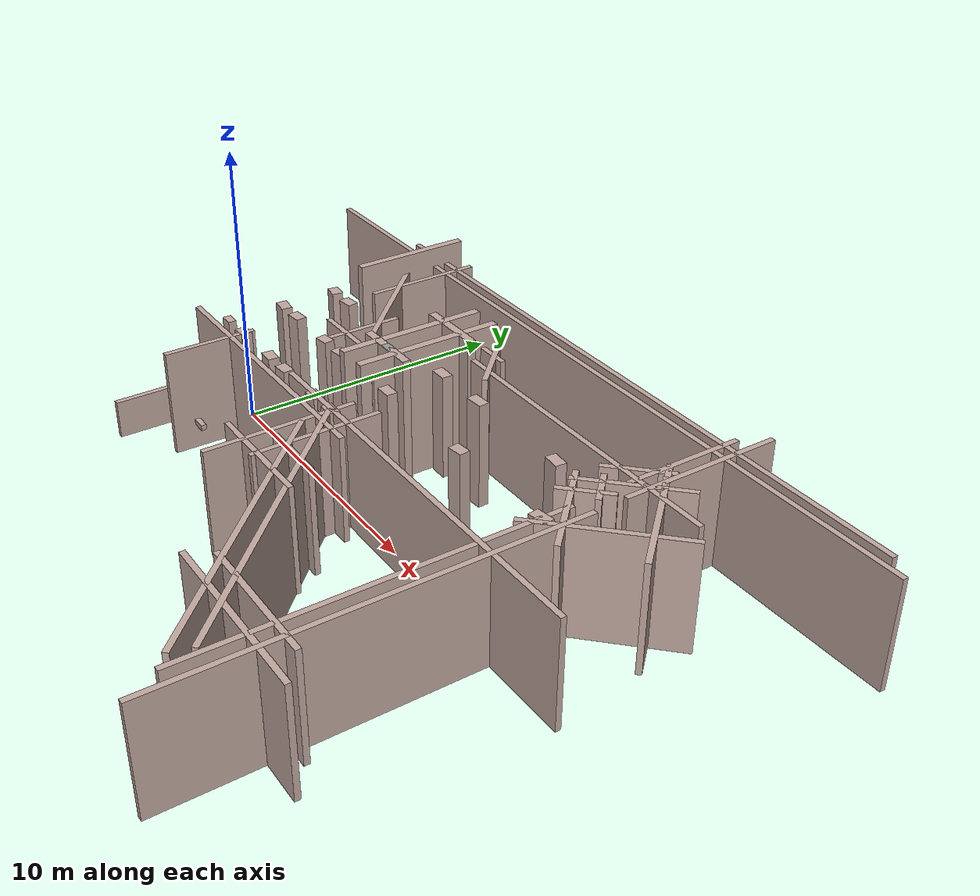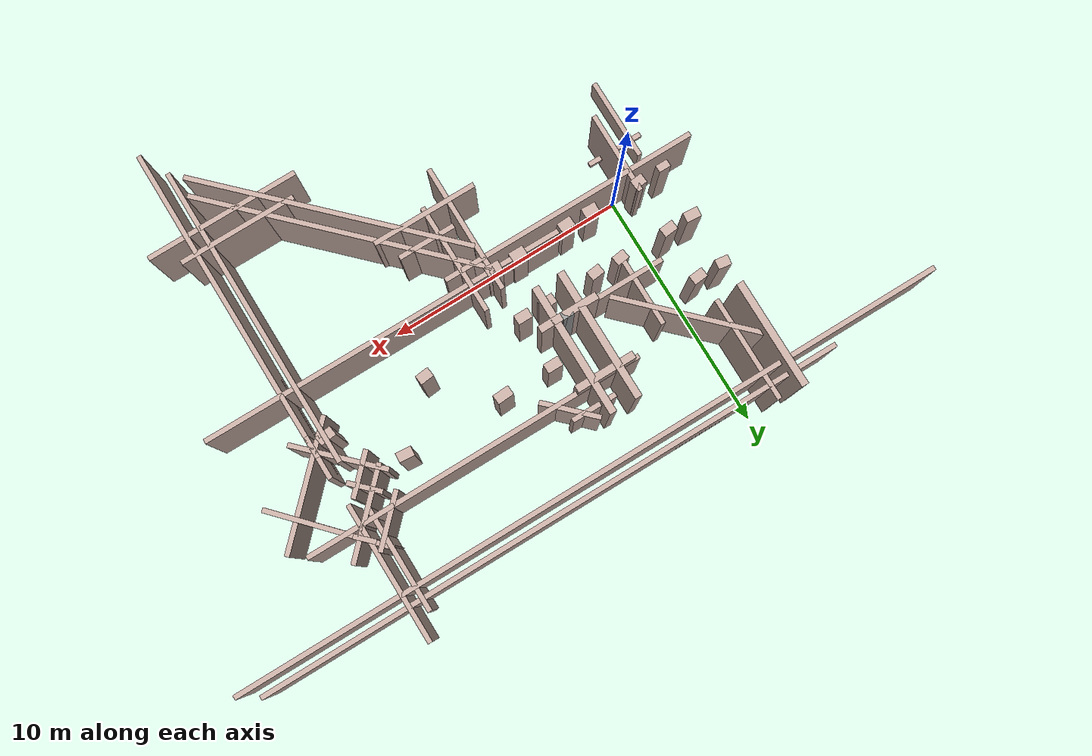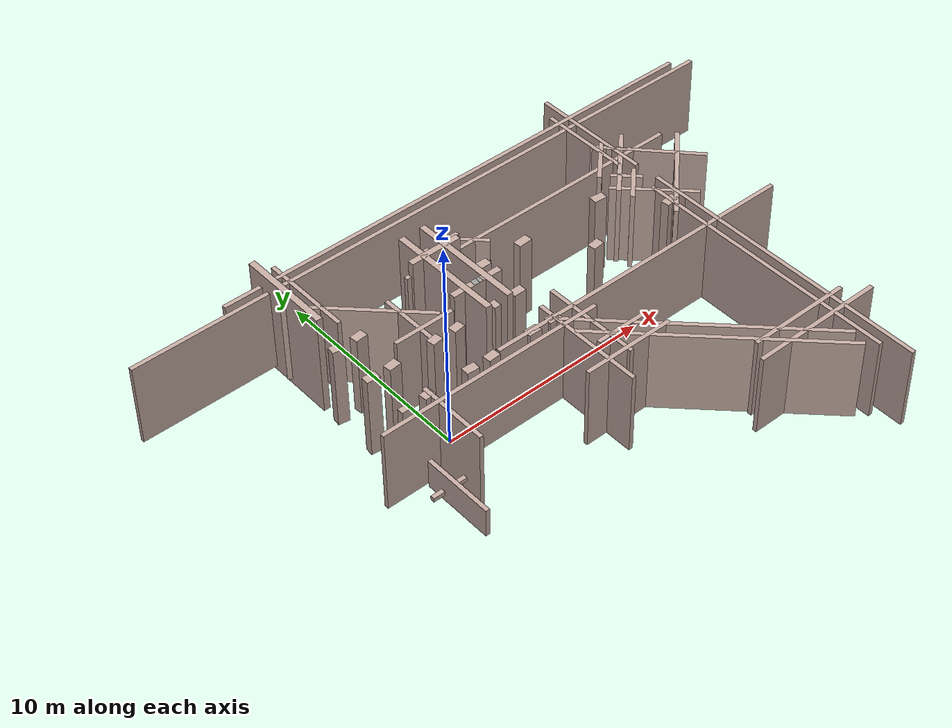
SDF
<sdf version="1.6">
 <model name="gedung_p">
  <pose>0.050512 1.27019 0 0 -0 0</pose>
  <link name="Wall_130">
   <collision name="Wall_130_Collision">
    <geometry><box><size>4.5 0.3 5.0</size></box></geometry>
    <pose>0 0 1.25 0 -0 0</pose>
   </collision>
   <visual name="Wall_130_Visual">
    <pose>0 0 1.25 0 -0 0</pose>
    <geometry><box><size>4.5 0.3 5.0</size></box></geometry>
    <material>
     <script><uri>file://media/materials/scripts/gazebo.material</uri><name>Gazebo/Grey</name></script>
     <ambient>0.760784 0.662745 0.627451 1</ambient>
    </material>
    <meta><layer>0</layer></meta>
   </visual>
   <pose>-1.87251 6.61981 0 0 -0 1.5708</pose>
  </link>
  <link name="Wall_132">
   <collision name="Wall_132_Collision">
    <geometry><box><size>4.40008 0.2 4.0</size></box></geometry>
    <pose>0 0 1 0 -0 0</pose>
   </collision>
   <visual name="Wall_132_Visual">
    <pose>0 0 1 0 -0 0</pose>
    <geometry><box><size>4.40008 0.2 4.0</size></box></geometry>
    <material>
     <script><uri>file://media/materials/scripts/gazebo.material</uri><name>Gazebo/Grey</name></script>
     <ambient>0.760784 0.662745 0.627451 1</ambient>
    </material>
    <meta><layer>0</layer></meta>
   </visual>
   <pose>-0.943512 6.5908 0 0 -0 -1.5708</pose>
  </link>
  <link name="Wall_137">
   <collision name="Wall_137_Collision">
    <geometry><box><size>6.40062 0.2 4.0</size></box></geometry>
    <pose>0 0 1 0 -0 0</pose>
   </collision>
   <visual name="Wall_137_Visual">
    <pose>0 0 1 0 -0 0</pose>
    <geometry><box><size>6.40062 0.2 4.0</size></box></geometry>
    <material>
     <script><uri>file://media/materials/scripts/gazebo.material</uri><name>Gazebo/Grey</name></script>
     <ambient>0.760784 0.662745 0.627451 1</ambient>
    </material>
    <meta><layer>0</layer></meta>
   </visual>
   <pose>0.152488 4.4448 0 0 -0 -0.785398</pose>
  </link>
  <link name="Wall_138">
   <collision name="Wall_138_Collision">
    <geometry><box><size>2.90014 0.2 4.0</size></box></geometry>
    <pose>0 0 1 0 -0 0</pose>
   </collision>
   <visual name="Wall_138_Visual">
    <pose>0 0 1 0 -0 0</pose>
    <geometry><box><size>2.90014 0.2 4.0</size></box></geometry>
    <material>
     <script><uri>file://media/materials/scripts/gazebo.material</uri><name>Gazebo/Grey</name></script>
     <ambient>0.760784 0.662745 0.627451 1</ambient>
    </material>
    <meta><layer>0</layer></meta>
   </visual>
   <pose>1.24849 2.67381 0 0 -0 -1.5708</pose>
  </link>
  <link name="Wall_139">
   <collision name="Wall_139_Collision">
    <geometry><box><size>4.90086 0.2 4.0</size></box></geometry>
    <pose>0 0 1 0 -0 0</pose>
   </collision>
   <visual name="Wall_139_Visual">
    <pose>0 0 1 0 -0 0</pose>
    <geometry><box><size>4.90086 0.2 4.0</size></box></geometry>
    <material>
     <script><uri>file://media/materials/scripts/gazebo.material</uri><name>Gazebo/Grey</name></script>
     <ambient>0.760784 0.662745 0.627451 1</ambient>
    </material>
    <meta><layer>0</layer></meta>
   </visual>
   <pose>2.42349 1.9988 0 0 -0 0</pose>
  </link>
  <link name="Wall_140">
   <collision name="Wall_140_Collision">
    <geometry><box><size>5.5 0.3 5.0</size></box></geometry>
    <pose>0 0 1.25 0 -0 0</pose>
   </collision>
   <visual name="Wall_140_Visual">
    <pose>0 0 1.25 0 -0 0</pose>
    <geometry><box><size>5.5 0.3 5.0</size></box></geometry>
    <material>
     <script><uri>file://media/materials/scripts/gazebo.material</uri><name>Gazebo/Grey</name></script>
     <ambient>0.760784 0.662745 0.627451 1</ambient>
    </material>
    <meta><layer>0</layer></meta>
   </visual>
   <pose>3.59849 3.29881 0 0 -0 1.5708</pose>
  </link>
  <link name="Wall_141">
   <collision name="Wall_141_Collision">
    <geometry><box><size>2.5 0.3 5.0</size></box></geometry>
    <pose>0 0 1.25 0 -0 0</pose>
   </collision>
   <visual name="Wall_141_Visual">
    <pose>0 0 1.25 0 -0 0</pose>
    <geometry><box><size>2.5 0.3 5.0</size></box></geometry>
    <material>
     <script><uri>file://media/materials/scripts/gazebo.material</uri><name>Gazebo/Grey</name></script>
     <ambient>0.760784 0.662745 0.627451 1</ambient>
    </material>
    <meta><layer>0</layer></meta>
   </visual>
   <pose>4.14849 4.5988 0 0 -0 0</pose>
  </link>
  <link name="Wall_142">
   <collision name="Wall_142_Collision">
    <geometry><box><size>5.5 0.3 5.0</size></box></geometry>
    <pose>0 0 1.25 0 -0 0</pose>
   </collision>
   <visual name="Wall_142_Visual">
    <pose>0 0 1.25 0 -0 0</pose>
    <geometry><box><size>5.5 0.3 5.0</size></box></geometry>
    <material>
     <script><uri>file://media/materials/scripts/gazebo.material</uri><name>Gazebo/Grey</name></script>
     <ambient>0.760784 0.662745 0.627451 1</ambient>
    </material>
    <meta><layer>0</layer></meta>
   </visual>
   <pose>4.69849 3.29881 0 0 -0 -1.5708</pose>
  </link>
  <link name="Wall_143">
   <collision name="Wall_143_Collision">
    <geometry><box><size>2.5 0.3 5.0</size></box></geometry>
    <pose>0 0 1.25 0 -0 0</pose>
   </collision>
   <visual name="Wall_143_Visual">
    <pose>0 0 1.25 0 -0 0</pose>
    <geometry><box><size>2.5 0.3 5.0</size></box></geometry>
    <material>
     <script><uri>file://media/materials/scripts/gazebo.material</uri><name>Gazebo/Grey</name></script>
     <ambient>0.760784 0.662745 0.627451 1</ambient>
    </material>
    <meta><layer>0</layer></meta>
   </visual>
   <pose>4.14849 1.9988 0 0 -0 3.14159</pose>
  </link>
  <link name="Wall_145">
   <collision name="Wall_145_Collision">
    <geometry><box><size>30.5 0.2 4.0</size></box></geometry>
    <pose>0 0 1 0 -0 0</pose>
   </collision>
   <visual name="Wall_145_Visual">
    <pose>0 0 1 0 -0 0</pose>
    <geometry><box><size>30.5 0.2 4.0</size></box></geometry>
    <material>
     <script><uri>file://media/materials/scripts/gazebo.material</uri><name>Gazebo/Grey</name></script>
     <ambient>0.760784 0.662745 0.627451 1</ambient>
    </material>
    <meta><layer>0</layer></meta>
   </visual>
   <pose>6.63149 7.64081 0 0 -0 0</pose>
  </link>
  <link name="Wall_147">
   <collision name="Wall_147_Collision">
    <geometry><box><size>2.4 0.2 0.2</size></box></geometry>
    <pose>0 0 0.05 0 -0 0</pose>
   </collision>
   <visual name="Wall_147_Visual">
    <pose>0 0 0.05 0 -0 0</pose>
    <geometry><box><size>2.4 0.2 0.2</size></box></geometry>
    <material>
     <script><uri>file://media/materials/scripts/gazebo.material</uri><name>Gazebo/Grey</name></script>
     <ambient>0.760784 0.662745 0.627451 1</ambient>
    </material>
    <meta><layer>0</layer></meta>
   </visual>
   <pose>1.87849 8.1548 0 0 -0 0</pose>
  </link>
  <link name="Wall_149">
   <collision name="Wall_149_Collision">
    <geometry><box><size>1.9 0.2 4.0</size></box></geometry>
    <pose>0 0 1 0 -0 0</pose>
   </collision>
   <visual name="Wall_149_Visual">
    <pose>0 0 1 0 -0 0</pose>
    <geometry><box><size>1.9 0.2 4.0</size></box></geometry>
    <material>
     <script><uri>file://media/materials/scripts/gazebo.material</uri><name>Gazebo/Grey</name></script>
     <ambient>0.760784 0.662745 0.627451 1</ambient>
    </material>
    <meta><layer>0</layer></meta>
   </visual>
   <pose>4.69849 5.02381 0 0 -0 1.5708</pose>
  </link>
  <link name="Wall_150">
   <collision name="Wall_150_Collision">
    <geometry><box><size>1.9 0.2 4.0</size></box></geometry>
    <pose>0 0 1 0 -0 0</pose>
   </collision>
   <visual name="Wall_150_Visual">
    <pose>0 0 1 0 -0 0</pose>
    <geometry><box><size>1.9 0.2 4.0</size></box></geometry>
    <material>
     <script><uri>file://media/materials/scripts/gazebo.material</uri><name>Gazebo/Grey</name></script>
     <ambient>0.760784 0.662745 0.627451 1</ambient>
    </material>
    <meta><layer>0</layer></meta>
   </visual>
   <pose>5.12349 5.44881 0 0 -0 0</pose>
  </link>
  <link name="Wall_151">
   <collision name="Wall_151_Collision">
    <geometry><box><size>2.4 0.2 4.0</size></box></geometry>
    <pose>0 0 1 0 -0 0</pose>
   </collision>
   <visual name="Wall_151_Visual">
    <pose>0 0 1 0 -0 0</pose>
    <geometry><box><size>2.4 0.2 4.0</size></box></geometry>
    <material>
     <script><uri>file://media/materials/scripts/gazebo.material</uri><name>Gazebo/Grey</name></script>
     <ambient>0.760784 0.662745 0.627451 1</ambient>
    </material>
    <meta><layer>0</layer></meta>
   </visual>
   <pose>5.93749 5.0598 0 0 -0 -0.785398</pose>
  </link>
  <link name="Wall_152">
   <collision name="Wall_152_Collision">
    <geometry><box><size>14.4 0.2 4.0</size></box></geometry>
    <pose>0 0 1 0 -0 0</pose>
   </collision>
   <visual name="Wall_152_Visual">
    <pose>0 0 1 0 -0 0</pose>
    <geometry><box><size>14.4 0.2 4.0</size></box></geometry>
    <material>
     <script><uri>file://media/materials/scripts/gazebo.material</uri><name>Gazebo/Grey</name></script>
     <ambient>0.760784 0.662745 0.627451 1</ambient>
    </material>
    <meta><layer>0</layer></meta>
   </visual>
   <pose>9.87649 4.6708 0 0 -0 0</pose>
  </link>
  <link name="Wall_154">
   <collision name="Wall_154_Collision">
    <geometry><box><size>2.40052 0.2 4.0</size></box></geometry>
    <pose>0 0 1 0 -0 0</pose>
   </collision>
   <visual name="Wall_154_Visual">
    <pose>0 0 1 0 -0 0</pose>
    <geometry><box><size>2.40052 0.2 4.0</size></box></geometry>
    <material>
     <script><uri>file://media/materials/scripts/gazebo.material</uri><name>Gazebo/Grey</name></script>
     <ambient>0.760784 0.662745 0.627451 1</ambient>
    </material>
    <meta><layer>0</layer></meta>
   </visual>
   <pose>13.8155 5.0598 0 0 -0 0.785398</pose>
  </link>
  <link name="Wall_155">
   <collision name="Wall_155_Collision">
    <geometry><box><size>4.39964 0.2 4.0</size></box></geometry>
    <pose>0 0 1 0 -0 0</pose>
   </collision>
   <visual name="Wall_155_Visual">
    <pose>0 0 1 0 -0 0</pose>
    <geometry><box><size>4.39964 0.2 4.0</size></box></geometry>
    <material>
     <script><uri>file://media/materials/scripts/gazebo.material</uri><name>Gazebo/Grey</name></script>
     <ambient>0.760784 0.662745 0.627451 1</ambient>
    </material>
    <meta><layer>0</layer></meta>
   </visual>
   <pose>14.2045 6.4988 0 0 -0 1.5708</pose>
  </link>
  <link name="Wall_157">
   <collision name="Wall_157_Collision">
    <geometry><box><size>24.9 0.2 4.0</size></box></geometry>
    <pose>0 0 1 0 -0 0</pose>
   </collision>
   <visual name="Wall_157_Visual">
    <pose>0 0 1 0 -0 0</pose>
    <geometry><box><size>24.9 0.2 4.0</size></box></geometry>
    <material>
     <script><uri>file://media/materials/scripts/gazebo.material</uri><name>Gazebo/Grey</name></script>
     <ambient>0.760784 0.662745 0.627451 1</ambient>
    </material>
    <meta><layer>0</layer></meta>
   </visual>
   <pose>8.60349 8.1548 0 0 -0 0</pose>
  </link>
  <link name="Wall_159">
   <collision name="Wall_159_Collision">
    <geometry><box><size>5.9 0.2 4.0</size></box></geometry>
    <pose>0 0 1 0 -0 0</pose>
   </collision>
   <visual name="Wall_159_Visual">
    <pose>0 0 1 0 -0 0</pose>
    <geometry><box><size>5.9 0.2 4.0</size></box></geometry>
    <material>
     <script><uri>file://media/materials/scripts/gazebo.material</uri><name>Gazebo/Grey</name></script>
     <ambient>0.760784 0.662745 0.627451 1</ambient>
    </material>
    <meta><layer>0</layer></meta>
   </visual>
   <pose>14.7785 6.7298 0 0 -0 -1.5708</pose>
  </link>
  <link name="Wall_161">
   <collision name="Wall_161_Collision">
    <geometry><box><size>0.898622 0.2 4.0</size></box></geometry>
    <pose>0 0 1 0 -0 0</pose>
   </collision>
   <visual name="Wall_161_Visual">
    <pose>0 0 1 0 -0 0</pose>
    <geometry><box><size>0.898622 0.2 4.0</size></box></geometry>
    <material>
     <script><uri>file://media/materials/scripts/gazebo.material</uri><name>Gazebo/Grey</name></script>
     <ambient>0.760784 0.662745 0.627451 1</ambient>
    </material>
    <meta><layer>0</layer></meta>
   </visual>
   <pose>14.902 5.18131 0 0 -0 -0.785398</pose>
  </link>
  <link name="Wall_162">
   <collision name="Wall_162_Collision">
    <geometry><box><size>3.9 0.2 4.0</size></box></geometry>
    <pose>0 0 1 0 -0 0</pose>
   </collision>
   <visual name="Wall_162_Visual">
    <pose>0 0 1 0 -0 0</pose>
    <geometry><box><size>3.9 0.2 4.0</size></box></geometry>
    <material>
     <script><uri>file://media/materials/scripts/gazebo.material</uri><name>Gazebo/Grey</name></script>
     <ambient>0.760784 0.662745 0.627451 1</ambient>
    </material>
    <meta><layer>0</layer></meta>
   </visual>
   <pose>14.3715 4.4033 0 0 -0 -2.35581</pose>
  </link>
  <link name="Wall_164">
   <collision name="Wall_164_Collision">
    <geometry><box><size>1.399964 0.2 4.0</size></box></geometry>
    <pose>0 0 1 0 -0 0</pose>
   </collision>
   <visual name="Wall_164_Visual">
    <pose>0 0 1 0 -0 0</pose>
    <geometry><box><size>1.399964 0.2 4.0</size></box></geometry>
    <material>
     <script><uri>file://media/materials/scripts/gazebo.material</uri><name>Gazebo/Grey</name></script>
     <ambient>0.760784 0.662745 0.627451 1</ambient>
    </material>
    <meta><layer>0</layer></meta>
   </visual>
   <pose>13.93 3.53681 0 0 -0 -0.78422</pose>
  </link>
  <link name="Wall_165">
   <collision name="Wall_165_Collision">
    <geometry><box><size>1.900418 0.2 4.0</size></box></geometry>
    <pose>0 0 1 0 -0 0</pose>
   </collision>
   <visual name="Wall_165_Visual">
    <pose>0 0 1 0 -0 0</pose>
    <geometry><box><size>1.900418 0.2 4.0</size></box></geometry>
    <material>
     <script><uri>file://media/materials/scripts/gazebo.material</uri><name>Gazebo/Grey</name></script>
     <ambient>0.760784 0.662745 0.627451 1</ambient>
    </material>
    <meta><layer>0</layer></meta>
   </visual>
   <pose>13.842 3.02431 0 0 -0 -2.35619</pose>
  </link>
  <link name="Wall_166">
   <collision name="Wall_166_Collision">
    <geometry><box><size>3.8993 0.2 4.0</size></box></geometry>
    <pose>0 0 1 0 -0 0</pose>
   </collision>
   <visual name="Wall_166_Visual">
    <pose>0 0 1 0 -0 0</pose>
    <geometry><box><size>3.8993 0.2 4.0</size></box></geometry>
    <material>
     <script><uri>file://media/materials/scripts/gazebo.material</uri><name>Gazebo/Grey</name></script>
     <ambient>0.760784 0.662745 0.627451 1</ambient>
    </material>
    <meta><layer>0</layer></meta>
   </visual>
   <pose>14.1955 2.06981 0 0 -0 -0.785398</pose>
  </link>
  <link name="Wall_169">
   <collision name="Wall_169_Collision">
    <geometry><box><size>5.39864 0.2 4.0</size></box></geometry>
    <pose>0 0 1 0 -0 0</pose>
   </collision>
   <visual name="Wall_169_Visual">
    <pose>0 0 1 0 -0 0</pose>
    <geometry><box><size>5.39864 0.2 4.0</size></box></geometry>
    <material>
     <script><uri>file://media/materials/scripts/gazebo.material</uri><name>Gazebo/Grey</name></script>
     <ambient>0.760784 0.662745 0.627451 1</ambient>
    </material>
    <meta><layer>0</layer></meta>
   </visual>
   <pose>15.7685 2.3348 0 0 -0 0.785398</pose>
  </link>
  <link name="Wall_173">
   <collision name="Wall_173_Collision">
    <geometry><box><size>5.10546 0.2 4.0</size></box></geometry>
    <pose>0 0 1 0 -0 0</pose>
   </collision>
   <visual name="Wall_173_Visual">
    <pose>0 0 1 0 -0 0</pose>
    <geometry><box><size>5.10546 0.2 4.0</size></box></geometry>
    <material>
     <script><uri>file://media/materials/scripts/gazebo.material</uri><name>Gazebo/Grey</name></script>
     <ambient>0.760784 0.662745 0.627451 1</ambient>
    </material>
    <meta><layer>0</layer></meta>
   </visual>
   <pose>15.8565 4.1558 0 0 -0 -0.826345</pose>
  </link>
  <link name="Wall_175">
   <collision name="Wall_175_Collision">
    <geometry><box><size>0.9 0.2 4.0</size></box></geometry>
    <pose>0 0 1 0 -0 0</pose>
   </collision>
   <visual name="Wall_175_Visual">
    <pose>0 0 1 0 -0 0</pose>
    <geometry><box><size>0.9 0.2 4.0</size></box></geometry>
    <material>
     <script><uri>file://media/materials/scripts/gazebo.material</uri><name>Gazebo/Grey</name></script>
     <ambient>0.760784 0.662745 0.627451 1</ambient>
    </material>
    <meta><layer>0</layer></meta>
   </visual>
   <pose>14.8495 1.2408 0 0 -0 -1.5708</pose>
  </link>
  <link name="Wall_176">
   <collision name="Wall_176_Collision">
    <geometry><box><size>4.4 0.2 0.2</size></box></geometry>
    <pose>0 0 0.05 0 -0 0</pose>
   </collision>
   <visual name="Wall_176_Visual">
    <pose>0 0 0.05 0 -0 0</pose>
    <geometry><box><size>4.4 0.2 0.2</size></box></geometry>
    <material>
     <script><uri>file://media/materials/scripts/gazebo.material</uri><name>Gazebo/Grey</name></script>
     <ambient>0.760784 0.662745 0.627451 1</ambient>
    </material>
    <meta><layer>0</layer></meta>
   </visual>
   <pose>14.8495 0.015805 0 0 -0 -1.5708</pose>
  </link>
  <link name="Wall_178">
   <collision name="Wall_178_Collision">
    <geometry><box><size>14.4 0.2 4.0</size></box></geometry>
    <pose>0 0 1 0 -0 0</pose>
   </collision>
   <visual name="Wall_178_Visual">
    <pose>0 0 1 0 -0 0</pose>
    <geometry><box><size>14.4 0.2 4.0</size></box></geometry>
    <material>
     <script><uri>file://media/materials/scripts/gazebo.material</uri><name>Gazebo/Grey</name></script>
     <ambient>0.760784 0.662745 0.627451 1</ambient>
    </material>
    <meta><layer>0</layer></meta>
   </visual>
   <pose>14.8495 -4.5842 0 0 -0 -1.5708</pose>
  </link>
  <link name="Wall_180">
   <collision name="Wall_180_Collision">
    <geometry><box><size>6.4 0.2 4.0</size></box></geometry>
    <pose>0 0 1 0 -0 0</pose>
   </collision>
   <visual name="Wall_180_Visual">
    <pose>0 0 1 0 -0 0</pose>
    <geometry><box><size>6.4 0.2 4.0</size></box></geometry>
    <material>
     <script><uri>file://media/materials/scripts/gazebo.material</uri><name>Gazebo/Grey</name></script>
     <ambient>0.760784 0.662745 0.627451 1</ambient>
    </material>
    <meta><layer>0</layer></meta>
   </visual>
   <pose>13.2995 -8.1342 0 0 -0 3.14159</pose>
  </link>
  <link name="Wall_181">
   <collision name="Wall_181_Collision">
    <geometry><box><size>11.4 0.2 4.0</size></box></geometry>
    <pose>0 0 1 0 -0 0</pose>
   </collision>
   <visual name="Wall_181_Visual">
    <pose>0 0 1 0 -0 0</pose>
    <geometry><box><size>11.4 0.2 4.0</size></box></geometry>
    <material>
     <script><uri>file://media/materials/scripts/gazebo.material</uri><name>Gazebo/Grey</name></script>
     <ambient>0.760784 0.662745 0.627451 1</ambient>
    </material>
    <meta><layer>0</layer></meta>
   </visual>
   <pose>9.76949 -6.15419 0 0 -0 2.35619</pose>
  </link>
  <link name="Wall_182">
   <collision name="Wall_182_Collision">
    <geometry><box><size>4.4 0.2 4.0</size></box></geometry>
    <pose>0 0 1 0 -0 0</pose>
   </collision>
   <visual name="Wall_182_Visual">
    <pose>0 0 1 0 -0 0</pose>
    <geometry><box><size>4.4 0.2 4.0</size></box></geometry>
    <material>
     <script><uri>file://media/materials/scripts/gazebo.material</uri><name>Gazebo/Grey</name></script>
     <ambient>0.760784 0.662745 0.627451 1</ambient>
    </material>
    <meta><layer>0</layer></meta>
   </visual>
   <pose>6.73949 -4.1742 0 0 -0 3.14159</pose>
  </link>
  <link name="Wall_189">
   <collision name="Wall_189_Collision">
    <geometry><box><size>5.4 0.2 4.0</size></box></geometry>
    <pose>0 0 1 0 -0 0</pose>
   </collision>
   <visual name="Wall_189_Visual">
    <pose>0 0 1 0 -0 0</pose>
    <geometry><box><size>5.4 0.2 4.0</size></box></geometry>
    <material>
     <script><uri>file://media/materials/scripts/gazebo.material</uri><name>Gazebo/Grey</name></script>
     <ambient>0.760784 0.662745 0.627451 1</ambient>
    </material>
    <meta><layer>0</layer></meta>
   </visual>
   <pose>5.68949 -2.87419 0 0 -0 1.5708</pose>
  </link>
  <link name="Wall_190">
   <collision name="Wall_190_Collision">
    <geometry><box><size>2.378 0.2 0.2</size></box></geometry>
    <pose>0 0 0.05 0 -0 0</pose>
   </collision>
   <visual name="Wall_190_Visual">
    <pose>0 0 0.05 0 -0 0</pose>
    <geometry><box><size>2.378 0.2 0.2</size></box></geometry>
    <material>
     <script><uri>file://media/materials/scripts/gazebo.material</uri><name>Gazebo/Grey</name></script>
     <ambient>0.760784 0.662745 0.627451 1</ambient>
    </material>
    <meta><layer>0</layer></meta>
   </visual>
   <pose>5.14499 -1.5742 0 0 -0 3.14159</pose>
  </link>
  <link name="Wall_191">
   <collision name="Wall_191_Collision">
    <geometry><box><size>10.8997 0.2 4.0</size></box></geometry>
    <pose>0 0 1 0 -0 0</pose>
   </collision>
   <visual name="Wall_191_Visual">
    <pose>0 0 1 0 -0 0</pose>
    <geometry><box><size>10.8997 0.2 4.0</size></box></geometry>
    <material>
     <script><uri>file://media/materials/scripts/gazebo.material</uri><name>Gazebo/Grey</name></script>
     <ambient>0.760784 0.662745 0.627451 1</ambient>
    </material>
    <meta><layer>0</layer></meta>
   </visual>
   <pose>1.92549 -1.5742 0 0 -0 3.14159</pose>
  </link>
  <link name="Wall_192">
   <collision name="Wall_192_Collision">
    <geometry><box><size>3.40008 0.2 4.0</size></box></geometry>
    <pose>0 0 1 0 -0 0</pose>
   </collision>
   <visual name="Wall_192_Visual">
    <pose>0 0 1 0 -0 0</pose>
    <geometry><box><size>3.40008 0.2 4.0</size></box></geometry>
    <material>
     <script><uri>file://media/materials/scripts/gazebo.material</uri><name>Gazebo/Grey</name></script>
     <ambient>0.760784 0.662745 0.627451 1</ambient>
    </material>
    <meta><layer>0</layer></meta>
   </visual>
   <pose>-0.755012 -2.37419 0 0 -0 -1.57767</pose>
  </link>
  <link name="Wall_194">
   <collision name="Wall_194_Collision">
    <geometry><box><size>2.4 0.2 0.2</size></box></geometry>
    <pose>0 0 0.05 0 -0 0</pose>
   </collision>
   <visual name="Wall_194_Visual">
    <pose>0 0 0.05 0 -0 0</pose>
    <geometry><box><size>2.4 0.2 0.2</size></box></geometry>
    <material>
     <script><uri>file://media/materials/scripts/gazebo.material</uri><name>Gazebo/Grey</name></script>
     <ambient>0.760784 0.662745 0.627451 1</ambient>
    </material>
    <meta><layer>0</layer></meta>
   </visual>
   <pose>-1.31051 -3.1742 0 0 -0 3.14159</pose>
  </link>
  <link name="Wall_195">
   <collision name="Wall_195_Collision">
    <geometry><box><size>3.4 0.2 1.4</size></box></geometry>
    <pose>0 0 0.35 0 -0 0</pose>
   </collision>
   <visual name="Wall_195_Visual">
    <pose>0 0 0.35 0 -0 0</pose>
    <geometry><box><size>3.4 0.2 1.4</size></box></geometry>
    <material>
     <script><uri>file://media/materials/scripts/gazebo.material</uri><name>Gazebo/Grey</name></script>
     <ambient>0.760784 0.662745 0.627451 1</ambient>
    </material>
    <meta><layer>0</layer></meta>
   </visual>
   <pose>-1.86051 -3.97419 0 0 -0 -1.5708</pose>
  </link>
  <link name="Wall_205">
   <collision name="Wall_205_Collision">
    <geometry><box><size>15.4006 0.2 4.0</size></box></geometry>
    <pose>0 0 1 0 -0 0</pose>
   </collision>
   <visual name="Wall_205_Visual">
    <pose>0 0 1 0 -0 0</pose>
    <geometry><box><size>15.4006 0.2 4.0</size></box></geometry>
    <material>
     <script><uri>file://media/materials/scripts/gazebo.material</uri><name>Gazebo/Grey</name></script>
     <ambient>0.760784 0.662745 0.627451 1</ambient>
    </material>
    <meta><layer>0</layer></meta>
   </visual>
   <pose>10.4455 -0.995195 0 0 -0 -0.002895</pose>
  </link>
  <link name="Wall_206">
   <collision name="Wall_206_Collision">
    <geometry><box><size>12.87816 0.2 4.0</size></box></geometry>
    <pose>0 0 1 0 -0 0</pose>
   </collision>
   <visual name="Wall_206_Visual">
    <pose>0 0 1 0 -0 0</pose>
    <geometry><box><size>12.87816 0.2 4.0</size></box></geometry>
    <material>
     <script><uri>file://media/materials/scripts/gazebo.material</uri><name>Gazebo/Grey</name></script>
     <ambient>0.760784 0.662745 0.627451 1</ambient>
    </material>
    <meta><layer>0</layer></meta>
   </visual>
   <pose>14.2455 -4.1757 0 0 -0 -1.5708</pose>
  </link>
  <link name="Wall_209">
   <collision name="Wall_209_Collision">
    <geometry><box><size>4.89946 0.2 4.0</size></box></geometry>
    <pose>0 0 1 0 -0 0</pose>
   </collision>
   <visual name="Wall_209_Visual">
    <pose>0 0 1 0 -0 0</pose>
    <geometry><box><size>4.89946 0.2 4.0</size></box></geometry>
    <material>
     <script><uri>file://media/materials/scripts/gazebo.material</uri><name>Gazebo/Grey</name></script>
     <ambient>0.760784 0.662745 0.627451 1</ambient>
    </material>
    <meta><layer>0</layer></meta>
   </visual>
   <pose>13.0705 -7.3452 0 0 -0 3.14159</pose>
  </link>
  <link name="Wall_210">
   <collision name="Wall_210_Collision">
    <geometry><box><size>11.8995 0.2 4.0</size></box></geometry>
    <pose>0 0 1 0 -0 0</pose>
   </collision>
   <visual name="Wall_210_Visual">
    <pose>0 0 1 0 -0 0</pose>
    <geometry><box><size>11.8995 0.2 4.0</size></box></geometry>
    <material>
     <script><uri>file://media/materials/scripts/gazebo.material</uri><name>Gazebo/Grey</name></script>
     <ambient>0.760784 0.662745 0.627451 1</ambient>
    </material>
    <meta><layer>0</layer></meta>
   </visual>
   <pose>9.82749 -5.27719 0 0 -0 2.35619</pose>
  </link>
  <link name="Wall_211">
   <collision name="Wall_211_Collision">
    <geometry><box><size>2.4 0.2 4.0</size></box></geometry>
    <pose>0 0 1 0 -0 0</pose>
   </collision>
   <visual name="Wall_211_Visual">
    <pose>0 0 1 0 -0 0</pose>
    <geometry><box><size>2.4 0.2 4.0</size></box></geometry>
    <material>
     <script><uri>file://media/materials/scripts/gazebo.material</uri><name>Gazebo/Grey</name></script>
     <ambient>0.760784 0.662745 0.627451 1</ambient>
    </material>
    <meta><layer>0</layer></meta>
   </visual>
   <pose>7.20949 -3.20919 0 0 -0 3.14159</pose>
  </link>
  <link name="Wall_214">
   <collision name="Wall_214_Collision">
    <geometry><box><size>4.64908 0.2 4.0</size></box></geometry>
    <pose>0 0 1 0 -0 0</pose>
   </collision>
   <visual name="Wall_214_Visual">
    <pose>0 0 1 0 -0 0</pose>
    <geometry><box><size>4.64908 0.2 4.0</size></box></geometry>
    <material>
     <script><uri>file://media/materials/scripts/gazebo.material</uri><name>Gazebo/Grey</name></script>
     <ambient>0.760784 0.662745 0.627451 1</ambient>
    </material>
    <meta><layer>0</layer></meta>
   </visual>
   <pose>6.65249 -2.09669 0 0 -0 -1.5645</pose>
  </link>
  <link name="Wall_233">
   <collision name="Wall_233_Collision">
    <geometry><box><size>0.520792 0.4 4.0</size></box></geometry>
    <pose>0 0 1 0 -0 0</pose>
   </collision>
   <visual name="Wall_233_Visual">
    <pose>0 0 1 0 -0 0</pose>
    <geometry><box><size>0.520792 0.4 4.0</size></box></geometry>
    <material>
     <script><uri>file://media/materials/scripts/gazebo.material</uri><name>Gazebo/Grey</name></script>
     <ambient>0.760784 0.662745 0.627451 1</ambient>
    </material>
    <meta><layer>0</layer></meta>
   </visual>
   <pose>-0.860454 -1.01152 0 0 -0 0.09066</pose>
  </link>
  <link name="Wall_235">
   <collision name="Wall_235_Collision">
    <geometry><box><size>0.59715 0.4 4.0</size></box></geometry>
    <pose>0 0 1 0 -0 0</pose>
   </collision>
   <visual name="Wall_235_Visual">
    <pose>0 0 1 0 -0 0</pose>
    <geometry><box><size>0.59715 0.4 4.0</size></box></geometry>
    <material>
     <script><uri>file://media/materials/scripts/gazebo.material</uri><name>Gazebo/Grey</name></script>
     <ambient>0.760784 0.662745 0.627451 1</ambient>
    </material>
    <meta><layer>0</layer></meta>
   </visual>
   <pose>1.29119 -1.02245 0 0 -0 -0.055499</pose>
  </link>
  <link name="Wall_237">
   <collision name="Wall_237_Collision">
    <geometry><box><size>0.585912 0.4 4.0</size></box></geometry>
    <pose>0 0 1 0 -0 0</pose>
   </collision>
   <visual name="Wall_237_Visual">
    <pose>0 0 1 0 -0 0</pose>
    <geometry><box><size>0.585912 0.4 4.0</size></box></geometry>
    <material>
     <script><uri>file://media/materials/scripts/gazebo.material</uri><name>Gazebo/Grey</name></script>
     <ambient>0.760784 0.662745 0.627451 1</ambient>
    </material>
    <meta><layer>0</layer></meta>
   </visual>
   <pose>2.36565 -1.02792 0 0 -0 -3.08284</pose>
  </link>
  <link name="Wall_239">
   <collision name="Wall_239_Collision">
    <geometry><box><size>0.61981 0.4 4.0</size></box></geometry>
    <pose>0 0 1 0 -0 0</pose>
   </collision>
   <visual name="Wall_239_Visual">
    <pose>0 0 1 0 -0 0</pose>
    <geometry><box><size>0.61981 0.4 4.0</size></box></geometry>
    <material>
     <script><uri>file://media/materials/scripts/gazebo.material</uri><name>Gazebo/Grey</name></script>
     <ambient>0.760784 0.662745 0.627451 1</ambient>
    </material>
    <meta><layer>0</layer></meta>
   </visual>
   <pose>4.51183 -1.00878 0 0 -0 0</pose>
  </link>
  <link name="Wall_242">
   <collision name="Wall_242_Collision">
    <geometry><box><size>0.3 0.3 5.0</size></box></geometry>
    <pose>0 0 1.25 0 -0 0</pose>
   </collision>
   <visual name="Wall_242_Visual">
    <pose>0 0 1.25 0 -0 0</pose>
    <geometry><box><size>0.3 0.3 5.0</size></box></geometry>
    <material>
     <script><uri>file://media/materials/scripts/gazebo.material</uri><name>Gazebo/Grey</name></script>
     <ambient>1 1 1 1</ambient>
    </material>
    <meta><layer>0</layer></meta>
   </visual>
   <pose>4.28764 2.00954 0 0 -0 0</pose>
  </link>
  <link name="Wall_244">
   <collision name="Wall_244_Collision">
    <geometry><box><size>0.5 0.3 5.0</size></box></geometry>
    <pose>0 0 1.25 0 -0 0</pose>
   </collision>
   <visual name="Wall_244_Visual">
    <pose>0 0 1.25 0 -0 0</pose>
    <geometry><box><size>0.5 0.3 5.0</size></box></geometry>
    <material>
     <script><uri>file://media/materials/scripts/gazebo.material</uri><name>Gazebo/Grey</name></script>
     <ambient>1 1 1 1</ambient>
    </material>
    <meta><layer>0</layer></meta>
   </visual>
   <pose>4.23218 2.00954 0 0 -0 3.14159</pose>
  </link>
  <link name="Wall_246">
   <collision name="Wall_246_Collision">
    <geometry><box><size>0.618992 0.4 4.0</size></box></geometry>
    <pose>0 0 1 0 -0 0</pose>
   </collision>
   <visual name="Wall_246_Visual">
    <pose>0 0 1 0 -0 0</pose>
    <geometry><box><size>0.618992 0.4 4.0</size></box></geometry>
    <material>
     <script><uri>file://media/materials/scripts/gazebo.material</uri><name>Gazebo/Grey</name></script>
     <ambient>0.760784 0.662745 0.627451 1</ambient>
    </material>
    <meta><layer>0</layer></meta>
   </visual>
   <pose>5.59996 -1.01699 0 0 -0 -0.049958</pose>
  </link>
  <link name="Wall_248">
   <collision name="Wall_248_Collision">
    <geometry><box><size>0.689444 0.4 4.0</size></box></geometry>
    <pose>0 0 1 0 -0 0</pose>
   </collision>
   <visual name="Wall_248_Visual">
    <pose>0 0 1 0 -0 0</pose>
    <geometry><box><size>0.689444 0.4 4.0</size></box></geometry>
    <material>
     <script><uri>file://media/materials/scripts/gazebo.material</uri><name>Gazebo/Grey</name></script>
     <ambient>0.760784 0.662745 0.627451 1</ambient>
    </material>
    <meta><layer>0</layer></meta>
   </visual>
   <pose>14.197 1.14518 0 0 -0 0.132552</pose>
  </link>
  <link name="Wall_250">
   <collision name="Wall_250_Collision">
    <geometry><box><size>0.573202 0.4 4.0</size></box></geometry>
    <pose>0 0 1 0 -0 0</pose>
   </collision>
   <visual name="Wall_250_Visual">
    <pose>0 0 1 0 -0 0</pose>
    <geometry><box><size>0.573202 0.4 4.0</size></box></geometry>
    <material>
     <script><uri>file://media/materials/scripts/gazebo.material</uri><name>Gazebo/Grey</name></script>
     <ambient>0.760784 0.662745 0.627451 1</ambient>
    </material>
    <meta><layer>0</layer></meta>
   </visual>
   <pose>9.91253 1.1404 0 0 -0 0.110657</pose>
  </link>
  <link name="Wall_252">
   <collision name="Wall_252_Collision">
    <geometry><box><size>0.610398 0.4 4.0</size></box></geometry>
    <pose>0 0 1 0 -0 0</pose>
   </collision>
   <visual name="Wall_252_Visual">
    <pose>0 0 1 0 -0 0</pose>
    <geometry><box><size>0.610398 0.4 4.0</size></box></geometry>
    <material>
     <script><uri>file://media/materials/scripts/gazebo.material</uri><name>Gazebo/Grey</name></script>
     <ambient>0.760784 0.662745 0.627451 1</ambient>
    </material>
    <meta><layer>0</layer></meta>
   </visual>
   <pose>5.58982 1.13562 0 0 -0 0</pose>
  </link>
  <link name="Wall_254">
   <collision name="Wall_254_Collision">
    <geometry><box><size>0.649386 0.4 4.0</size></box></geometry>
    <pose>0 0 1 0 -0 0</pose>
   </collision>
   <visual name="Wall_254_Visual">
    <pose>0 0 1 0 -0 0</pose>
    <geometry><box><size>0.649386 0.4 4.0</size></box></geometry>
    <material>
     <script><uri>file://media/materials/scripts/gazebo.material</uri><name>Gazebo/Grey</name></script>
     <ambient>0.760784 0.662745 0.627451 1</ambient>
    </material>
    <meta><layer>0</layer></meta>
   </visual>
   <pose>5.58982 3.28741 0 0 -0 0</pose>
  </link>
  <link name="Wall_256">
   <collision name="Wall_256_Collision">
    <geometry><box><size>0.687542 0.4 4.0</size></box></geometry>
    <pose>0 0 1 0 -0 0</pose>
   </collision>
   <visual name="Wall_256_Visual">
    <pose>0 0 1 0 -0 0</pose>
    <geometry><box><size>0.687542 0.4 4.0</size></box></geometry>
    <material>
     <script><uri>file://media/materials/scripts/gazebo.material</uri><name>Gazebo/Grey</name></script>
     <ambient>0.760784 0.662745 0.627451 1</ambient>
    </material>
    <meta><layer>0</layer></meta>
   </visual>
   <pose>7.7703 3.28263 0 0 -0 0.066568</pose>
  </link>
  <link name="Wall_258">
   <collision name="Wall_258_Collision">
    <geometry><box><size>0.63032 0.4 4.0</size></box></geometry>
    <pose>0 0 1 0 -0 0</pose>
   </collision>
   <visual name="Wall_258_Visual">
    <pose>0 0 1 0 -0 0</pose>
    <geometry><box><size>0.63032 0.4 4.0</size></box></geometry>
    <material>
     <script><uri>file://media/materials/scripts/gazebo.material</uri><name>Gazebo/Grey</name></script>
     <ambient>0.760784 0.662745 0.627451 1</ambient>
    </material>
    <meta><layer>0</layer></meta>
   </visual>
   <pose>12.0309 3.27306 0 0 -0 -0.083141</pose>
  </link>
  <link name="Wall_260">
   <collision name="Wall_260_Collision">
    <geometry><box><size>0.63032 0.4 4.0</size></box></geometry>
    <pose>0 0 1 0 -0 0</pose>
   </collision>
   <visual name="Wall_260_Visual">
    <pose>0 0 1 0 -0 0</pose>
    <geometry><box><size>0.63032 0.4 4.0</size></box></geometry>
    <material>
     <script><uri>file://media/materials/scripts/gazebo.material</uri><name>Gazebo/Grey</name></script>
     <ambient>0.760784 0.662745 0.627451 1</ambient>
    </material>
    <meta><layer>0</layer></meta>
   </visual>
   <pose>4.52349 1.1404 0 0 -0 0.083141</pose>
  </link>
  <link name="Wall_262">
   <collision name="Wall_262_Collision">
    <geometry><box><size>0.535248 0.4 4.0</size></box></geometry>
    <pose>0 0 1 0 -0 0</pose>
   </collision>
   <visual name="Wall_262_Visual">
    <pose>0 0 1 0 -0 0</pose>
    <geometry><box><size>0.535248 0.4 4.0</size></box></geometry>
    <material>
     <script><uri>file://media/materials/scripts/gazebo.material</uri><name>Gazebo/Grey</name></script>
     <ambient>0.760784 0.662745 0.627451 1</ambient>
    </material>
    <meta><layer>0</layer></meta>
   </visual>
   <pose>1.27667 1.13083 0 0 -0 0.141897</pose>
  </link>
  <link name="Wall_264">
   <collision name="Wall_264_Collision">
    <geometry><box><size>0.554208 0.4 4.0</size></box></geometry>
    <pose>0 0 1 0 -0 0</pose>
   </collision>
   <visual name="Wall_264_Visual">
    <pose>0 0 1 0 -0 0</pose>
    <geometry><box><size>0.554208 0.4 4.0</size></box></geometry>
    <material>
     <script><uri>file://media/materials/scripts/gazebo.material</uri><name>Gazebo/Grey</name></script>
     <ambient>0.760784 0.662745 0.627451 1</ambient>
    </material>
    <meta><layer>0</layer></meta>
   </visual>
   <pose>2.38126 1.12127 0 0 -0 0.124355</pose>
  </link>
  <link name="Wall_281">
   <collision name="Wall_281_Collision">
    <geometry><box><size>0.535248 0.4 4.0</size></box></geometry>
    <pose>0 0 1 0 -0 0</pose>
   </collision>
   <visual name="Wall_281_Visual">
    <pose>0 0 1 0 -0 0</pose>
    <geometry><box><size>0.535248 0.4 4.0</size></box></geometry>
    <material>
     <script><uri>file://media/materials/scripts/gazebo.material</uri><name>Gazebo/Grey</name></script>
     <ambient>0.760784 0.662745 0.627451 1</ambient>
    </material>
    <meta><layer>0</layer></meta>
   </visual>
   <pose>-1.92711 3.30175 0 0 -0 -0.141897</pose>
  </link>
  <link name="Wall_283">
   <collision name="Wall_283_Collision">
    <geometry><box><size>0.611266 0.4 4.0</size></box></geometry>
    <pose>0 0 1 0 -0 0</pose>
   </collision>
   <visual name="Wall_283_Visual">
    <pose>0 0 1 0 -0 0</pose>
    <geometry><box><size>0.611266 0.4 4.0</size></box></geometry>
    <material>
     <script><uri>file://media/materials/scripts/gazebo.material</uri><name>Gazebo/Grey</name></script>
     <ambient>0.760784 0.662745 0.627451 1</ambient>
    </material>
    <meta><layer>0</layer></meta>
   </visual>
   <pose>-1.90798 1.1404 0 0 -0 -0.09066</pose>
  </link>
  <link name="Wall_287">
   <collision name="Wall_287_Collision">
    <geometry><box><size>0.5 0.3 4.0</size></box></geometry>
    <pose>0 0 1 0 -0 0</pose>
   </collision>
   <visual name="Wall_287_Visual">
    <pose>0 0 1 0 -0 0</pose>
    <geometry><box><size>0.5 0.3 4.0</size></box></geometry>
    <material>
     <script><uri>file://media/materials/scripts/gazebo.material</uri><name>Gazebo/Grey</name></script>
     <ambient>0.760784 0.662745 0.627451 1</ambient>
    </material>
    <meta><layer>0</layer></meta>
   </visual>
   <pose>-1.97751 -1.0352 0 0 -0 0</pose>
  </link>
  <link name="Wall_289">
   <collision name="Wall_289_Collision">
    <geometry><box><size>0.592224 0.4 4.0</size></box></geometry>
    <pose>0 0 1 0 -0 0</pose>
   </collision>
   <visual name="Wall_289_Visual">
    <pose>0 0 1 0 -0 0</pose>
    <geometry><box><size>0.592224 0.4 4.0</size></box></geometry>
    <material>
     <script><uri>file://media/materials/scripts/gazebo.material</uri><name>Gazebo/Grey</name></script>
     <ambient>0.760784 0.662745 0.627451 1</ambient>
    </material>
    <meta><layer>0</layer></meta>
   </visual>
   <pose>-0.841647 3.27306 0 0 -0 0.099669</pose>
  </link>
  <link name="Wall_291">
   <collision name="Wall_291_Collision">
    <geometry><box><size>0.592224 0.4 4.0</size></box></geometry>
    <pose>0 0 1 0 -0 0</pose>
   </collision>
   <visual name="Wall_291_Visual">
    <pose>0 0 1 0 -0 0</pose>
    <geometry><box><size>0.592224 0.4 4.0</size></box></geometry>
    <material>
     <script><uri>file://media/materials/scripts/gazebo.material</uri><name>Gazebo/Grey</name></script>
     <ambient>0.760784 0.662745 0.627451 1</ambient>
    </material>
    <meta><layer>0</layer></meta>
   </visual>
   <pose>-0.860774 1.1404 0 0 -0 0.099669</pose>
  </link>
  <static>1</static>
 </model>
</sdf>
